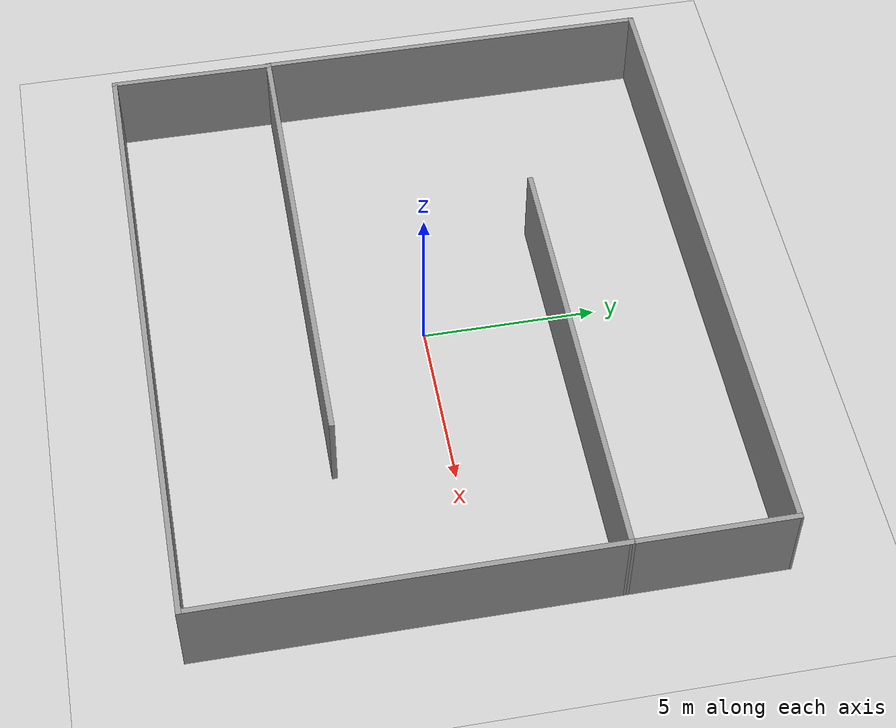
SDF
<sdf version="1.6">
 <world name="default">
  <light name="sun" type="directional">
   <pose>0 0 10 0 -0 0</pose>
   <diffuse>0.8 0.8 0.8 1</diffuse>
   <specular>0.1 0.1 0.1 1</specular>
   <attenuation>
    <range>1000</range>
    <constant>0.9</constant>
    <linear>0.01</linear>
    <quadratic>0.001</quadratic>
   </attenuation>
   <direction>-0.5 0.5 -1</direction>
  </light>
  <model name="ground_plane">
   <static>1</static>
   <link name="link">
    <collision name="collision">
     <geometry><plane><normal>0 0 1</normal><size>100 100</size></plane></geometry>
     <surface><friction><ode><mu>100</mu><mu2>50</mu2></ode></friction></surface>
    </collision>
    <visual name="visual">
     <cast_shadows>0</cast_shadows>
     <geometry><plane><normal>0 0 1</normal><size>100 100</size></plane></geometry>
     <material>
      <script><uri>file://media/materials/scripts/gazebo.material</uri><name>Gazebo/Grey</name></script>
     </material>
    </visual>
   </link>
  </model>
  <gravity>0 0 -9.8</gravity>
  <magnetic_field>6e-06 2.3e-05 -4.2e-05</magnetic_field>
  <atmosphere type="adiabatic"/>
  <physics name="default_physics" default="0" type="ode">
   <max_step_size>0.001</max_step_size>
   <real_time_factor>1</real_time_factor>
   <real_time_update_rate>1000</real_time_update_rate>
  </physics>
  <scene><ambient>0.4 0.4 0.4 1</ambient><background>0.7 0.7 0.7 1</background><shadows>1</shadows></scene>
  <spherical_coordinates>
   <surface_model>EARTH_WGS84</surface_model>
   <latitude_deg>0</latitude_deg>
   <longitude_deg>0</longitude_deg>
   <elevation>0</elevation>
   <heading_deg>0</heading_deg>
  </spherical_coordinates>
  <model name="maze.world">
   <pose>0.071031 0.142379 0 0 -0 0</pose>
   <link name="Wall_0">
    <collision name="Wall_0_Collision">
     <geometry><box><size>13.7314 0.15 2.5</size></box></geometry>
     <pose>0 0 1.25 0 -0 0</pose>
    </collision>
    <visual name="Wall_0_Visual">
     <pose>0 0 1.25 0 -0 0</pose>
     <geometry><box><size>13.7314 0.15 2.5</size></box></geometry>
     <material>
      <script><uri>file://media/materials/scripts/gazebo.material</uri><name>Gazebo/Grey</name></script>
      <ambient>1 1 1 1</ambient>
     </material>
    </visual>
    <pose>-2.48676 -3.37491 0 0 -0 3.13475</pose>
   </link>
   <link name="Wall_10">
    <collision name="Wall_10_Collision">
     <geometry><box><size>11.75 0.15 2.5</size></box></geometry>
     <pose>0 0 1.25 0 -0 0</pose>
    </collision>
    <visual name="Wall_10_Visual">
     <pose>0 0 1.25 0 -0 0</pose>
     <geometry><box><size>11.75 0.15 2.5</size></box></geometry>
     <material>
      <script><uri>file://media/materials/scripts/gazebo.material</uri><name>Gazebo/Grey</name></script>
      <ambient>1 1 1 1</ambient>
     </material>
    </visual>
    <pose>9.30377 -2.22138 0 0 -0 1.5708</pose>
   </link>
   <link name="Wall_13">
    <collision name="Wall_13_Collision">
     <geometry><box><size>12.75 0.15 2.5</size></box></geometry>
     <pose>0 0 1.25 0 -0 0</pose>
    </collision>
    <visual name="Wall_13_Visual">
     <pose>0 0 1.25 0 -0 0</pose>
     <geometry><box><size>12.75 0.15 2.5</size></box></geometry>
     <material>
      <script><uri>file://media/materials/scripts/gazebo.material</uri><name>Gazebo/Grey</name></script>
      <ambient>1 1 1 1</ambient>
     </material>
    </visual>
    <pose>3.00378 3.57862 0 0 -0 3.14159</pose>
   </link>
   <link name="Wall_15">
    <collision name="Wall_15_Collision">
     <geometry><box><size>18.75 0.15 2.5</size></box></geometry>
     <pose>0 0 1.25 0 -0 0</pose>
    </collision>
    <visual name="Wall_15_Visual">
     <pose>0 0 1.25 0 -0 0</pose>
     <geometry><box><size>18.75 0.15 2.5</size></box></geometry>
     <material>
      <script><uri>file://media/materials/scripts/gazebo.material</uri><name>Gazebo/Grey</name></script>
      <ambient>1 1 1 1</ambient>
     </material>
    </visual>
    <pose>-0.003903 8.02155 0 0 -0 0</pose>
   </link>
   <link name="Wall_16">
    <collision name="Wall_16_Collision">
     <geometry><box><size>4.59293 0.15 2.5</size></box></geometry>
     <pose>0 0 1.25 0 -0 0</pose>
    </collision>
    <visual name="Wall_16_Visual">
     <pose>0 0 1.25 0 -0 0</pose>
     <geometry><box><size>4.59293 0.15 2.5</size></box></geometry>
     <material>
      <script><uri>file://media/materials/scripts/gazebo.material</uri><name>Gazebo/Grey</name></script>
      <ambient>1 1 1 1</ambient>
     </material>
    </visual>
    <pose>9.29994 5.80009 0 0 0 -1.56907</pose>
   </link>
   <link name="Wall_6">
    <collision name="Wall_6_Collision">
     <geometry><box><size>11.5 0.15 2.5</size></box></geometry>
     <pose>0 0 1.25 0 -0 0</pose>
    </collision>
    <visual name="Wall_6_Visual">
     <pose>0 0 1.25 0 -0 0</pose>
     <geometry><box><size>11.5 0.15 2.5</size></box></geometry>
     <material>
      <script><uri>file://media/materials/scripts/gazebo.material</uri><name>Gazebo/Grey</name></script>
      <ambient>1 1 1 1</ambient>
     </material>
    </visual>
    <pose>-9.3039 2.34655 0 0 -0 1.5708</pose>
   </link>
   <link name="Wall_8">
    <collision name="Wall_8_Collision">
     <geometry><box><size>4.84297 0.15 2.5</size></box></geometry>
     <pose>0 0 1.25 0 -0 0</pose>
    </collision>
    <visual name="Wall_8_Visual">
     <pose>0 0 1.25 0 -0 0</pose>
     <geometry><box><size>4.84297 0.15 2.5</size></box></geometry>
     <material>
      <script><uri>file://media/materials/scripts/gazebo.material</uri><name>Gazebo/Grey</name></script>
      <ambient>1 1 1 1</ambient>
     </material>
    </visual>
    <pose>-9.28676 -5.67491 0 0 0 -1.57483</pose>
   </link>
   <link name="Wall_9">
    <collision name="Wall_9_Collision">
     <geometry><box><size>18.75 0.15 2.5</size></box></geometry>
     <pose>0 0 1.25 0 -0 0</pose>
    </collision>
    <visual name="Wall_9_Visual">
     <pose>0 0 1.25 0 -0 0</pose>
     <geometry><box><size>18.75 0.15 2.5</size></box></geometry>
     <material>
      <script><uri>file://media/materials/scripts/gazebo.material</uri><name>Gazebo/Grey</name></script>
      <ambient>1 1 1 1</ambient>
     </material>
    </visual>
    <pose>0.003775 -8.02138 0 0 -0 0</pose>
   </link>
   <static>1</static>
  </model>
 </world>
</sdf>
